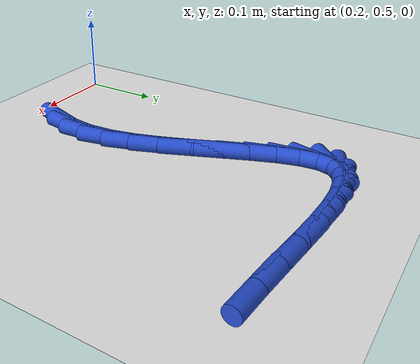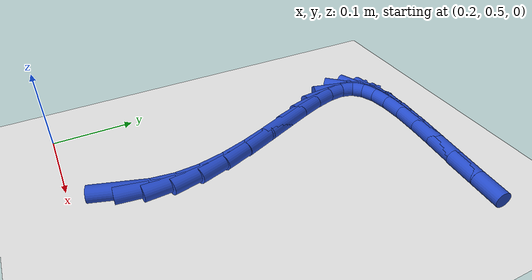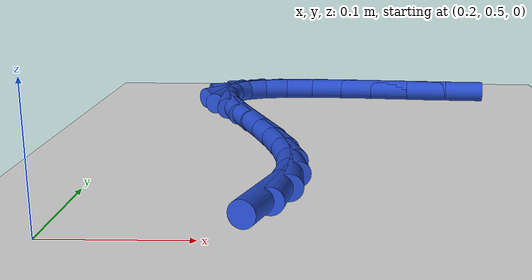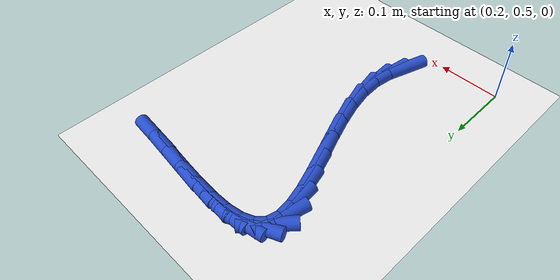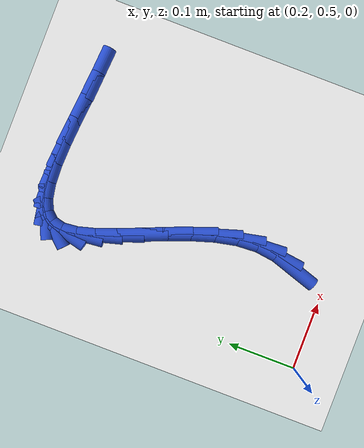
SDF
<sdf version="1.6">
 <world name="default">
  <model name="ground_plane">
   <static>1</static>
   <link name="link">
    <collision name="collision">
     <geometry><plane><normal>0 0 1</normal><size>100 100</size></plane></geometry>
     <surface><friction><ode><mu>100</mu><mu2>50</mu2></ode></friction></surface>
    </collision>
    <visual name="visual">
     <cast_shadows>0</cast_shadows>
     <geometry><plane><normal>0 0 1</normal><size>100 100</size></plane></geometry>
     <material>
      <script><uri>file://media/materials/scripts/gazebo.material</uri><name>Gazebo/WhiteGlow</name></script>
     </material>
    </visual>
   </link>
  </model>
  <model name="line">
   <link name="link_22">
    <pose>0.33706564397052713 0.5579899461944575 0.01 0 1.57 1.2600442952651378</pose>
    <collision name="collision">
     <geometry><cylinder><radius>0.01</radius><length>0.08</length></cylinder></geometry>
    </collision>
    <visual name="visual">
     <material>
      <script><name>Gazebo/Blue</name><uri>file://media/materials/scripts/gazebo.material</uri></script>
     </material>
     <geometry><cylinder><radius>0.01</radius><length>0.08</length></cylinder></geometry>
    </visual>
   </link>
   <link name="link_23">
    <pose>0.3457171097198556 0.5849283855907759 0.01 0 1.57 1.443409605075324</pose>
    <collision name="collision">
     <geometry><cylinder><radius>0.01</radius><length>0.08</length></cylinder></geometry>
    </collision>
    <visual name="visual">
     <material>
      <script><name>Gazebo/Blue</name><uri>file://media/materials/scripts/gazebo.material</uri></script>
     </material>
     <geometry><cylinder><radius>0.01</radius><length>0.08</length></cylinder></geometry>
    </visual>
   </link>
   <link name="link_24">
    <pose>0.34940391397387377 0.6137134913662359 0.01 0 1.57 -1.511514143034651</pose>
    <collision name="collision">
     <geometry><cylinder><radius>0.01</radius><length>0.08</length></cylinder></geometry>
    </collision>
    <visual name="visual">
     <material>
      <script><name>Gazebo/Blue</name><uri>file://media/materials/scripts/gazebo.material</uri></script>
     </material>
     <geometry><cylinder><radius>0.01</radius><length>0.08</length></cylinder></geometry>
    </visual>
   </link>
   <link name="link_25">
    <pose>0.3475731662856283 0.6445592265192032 0.01 0 1.57 -1.3617061272588245</pose>
    <collision name="collision">
     <geometry><cylinder><radius>0.01</radius><length>0.08</length></cylinder></geometry>
    </collision>
    <visual name="visual">
     <material>
      <script><name>Gazebo/Blue</name><uri>file://media/materials/scripts/gazebo.material</uri></script>
     </material>
     <geometry><cylinder><radius>0.01</radius><length>0.08</length></cylinder></geometry>
    </visual>
   </link>
   <link name="link_26">
    <pose>0.34065296901439907 0.6771722077106695 0.01 0 1.57 -1.265019465220156</pose>
    <collision name="collision">
     <geometry><cylinder><radius>0.01</radius><length>0.08</length></cylinder></geometry>
    </collision>
    <visual name="visual">
     <material>
      <script><name>Gazebo/Blue</name><uri>file://media/materials/scripts/gazebo.material</uri></script>
     </material>
     <geometry><cylinder><radius>0.01</radius><length>0.08</length></cylinder></geometry>
    </visual>
   </link>
   <link name="link_27">
    <pose>0.3300527361134496 0.7107515403947458 0.01 0 1.57 -1.2072986790704372</pose>
    <collision name="collision">
     <geometry><cylinder><radius>0.01</radius><length>0.08</length></cylinder></geometry>
    </collision>
    <visual name="visual">
     <material>
      <script><name>Gazebo/Blue</name><uri>file://media/materials/scripts/gazebo.material</uri></script>
     </material>
     <geometry><cylinder><radius>0.01</radius><length>0.08</length></cylinder></geometry>
    </visual>
   </link>
   <link name="link_28">
    <pose>0.31722457221441464 0.7444742514137802 0.01 0 1.57 -1.180241004380367</pose>
    <collision name="collision">
     <geometry><cylinder><radius>0.01</radius><length>0.08</length></cylinder></geometry>
    </collision>
    <visual name="visual">
     <material>
      <script><name>Gazebo/Blue</name><uri>file://media/materials/scripts/gazebo.material</uri></script>
     </material>
     <geometry><cylinder><radius>0.01</radius><length>0.08</length></cylinder></geometry>
    </visual>
   </link>
   <link name="link_29">
    <pose>0.30362058194892955 0.7775173676101204 0.01 0 1.57 -1.1818053028943247</pose>
    <collision name="collision">
     <geometry><cylinder><radius>0.01</radius><length>0.08</length></cylinder></geometry>
    </collision>
    <visual name="visual">
     <material>
      <script><name>Gazebo/Blue</name><uri>file://media/materials/scripts/gazebo.material</uri></script>
     </material>
     <geometry><cylinder><radius>0.01</radius><length>0.08</length></cylinder></geometry>
    </visual>
   </link>
   <link name="link_30">
    <pose>0.2906928699486294 0.8090579158261135 0.01 0 1.57 -1.2167242451135813</pose>
    <collision name="collision">
     <geometry><cylinder><radius>0.01</radius><length>0.08</length></cylinder></geometry>
    </collision>
    <visual name="visual">
     <material>
      <script><name>Gazebo/Blue</name><uri>file://media/materials/scripts/gazebo.material</uri></script>
     </material>
     <geometry><cylinder><radius>0.01</radius><length>0.08</length></cylinder></geometry>
    </visual>
   </link>
   <link name="link_31">
    <pose>0.2798935408451488 0.8382729229041075 0.01 0 1.57 -1.30062787033472</pose>
    <collision name="collision">
     <geometry><cylinder><radius>0.01</radius><length>0.08</length></cylinder></geometry>
    </collision>
    <visual name="visual">
     <material>
      <script><name>Gazebo/Blue</name><uri>file://media/materials/scripts/gazebo.material</uri></script>
     </material>
     <geometry><cylinder><radius>0.01</radius><length>0.08</length></cylinder></geometry>
    </visual>
   </link>
   <link name="link_32">
    <pose>0.27267469927012306 0.86433941568645 0.01 0 1.57 -1.4721696880536552</pose>
    <collision name="collision">
     <geometry><cylinder><radius>0.01</radius><length>0.08</length></cylinder></geometry>
    </collision>
    <visual name="visual">
     <material>
      <script><name>Gazebo/Blue</name><uri>file://media/materials/scripts/gazebo.material</uri></script>
     </material>
     <geometry><cylinder><radius>0.01</radius><length>0.08</length></cylinder></geometry>
    </visual>
   </link>
   <link name="link_33">
    <pose>0.27048844985518705 0.8864344210154884 0.01 0 1.57 1.3277084426575376</pose>
    <collision name="collision">
     <geometry><cylinder><radius>0.01</radius><length>0.08</length></cylinder></geometry>
    </collision>
    <visual name="visual">
     <material>
      <script><name>Gazebo/Blue</name><uri>file://media/materials/scripts/gazebo.material</uri></script>
     </material>
     <geometry><cylinder><radius>0.01</radius><length>0.08</length></cylinder></geometry>
    </visual>
   </link>
   <link name="link_34">
    <pose>0.2747799939907737 0.903739593108168 0.01 0 1.57 0.8164979542598615</pose>
    <collision name="collision">
     <geometry><cylinder><radius>0.01</radius><length>0.08</length></cylinder></geometry>
    </collision>
    <visual name="visual">
     <material>
      <script><name>Gazebo/Blue</name><uri>file://media/materials/scripts/gazebo.material</uri></script>
     </material>
     <geometry><cylinder><radius>0.01</radius><length>0.08</length></cylinder></geometry>
    </visual>
   </link>
   <link name="link_35">
    <pose>0.28624393927247543 0.9159397235566972 0.01 0 1.57 0.40721604151239205</pose>
    <collision name="collision">
     <geometry><cylinder><radius>0.01</radius><length>0.08</length></cylinder></geometry>
    </collision>
    <visual name="visual">
     <material>
      <script><name>Gazebo/Blue</name><uri>file://media/materials/scripts/gazebo.material</uri></script>
     </material>
     <geometry><cylinder><radius>0.01</radius><length>0.08</length></cylinder></geometry>
    </visual>
   </link>
   <link name="link_36">
    <pose>0.3041605986678024 0.9236676326898843 0.01 0 1.57 0.16837543645940953</pose>
    <collision name="collision">
     <geometry><cylinder><radius>0.01</radius><length>0.08</length></cylinder></geometry>
    </collision>
    <visual name="visual">
     <material>
      <script><name>Gazebo/Blue</name><uri>file://media/materials/scripts/gazebo.material</uri></script>
     </material>
     <geometry><cylinder><radius>0.01</radius><length>0.08</length></cylinder></geometry>
    </visual>
   </link>
   <link name="link_37">
    <pose>0.3276536985306626 0.9276611038382451 0.01 0 1.57 0.03534182285236578</pose>
    <collision name="collision">
     <geometry><cylinder><radius>0.01</radius><length>0.08</length></cylinder></geometry>
    </collision>
    <visual name="visual">
     <material>
      <script><name>Gazebo/Blue</name><uri>file://media/materials/scripts/gazebo.material</uri></script>
     </material>
     <geometry><cylinder><radius>0.01</radius><length>0.08</length></cylinder></geometry>
    </visual>
   </link>
   <link name="link_38">
    <pose>0.3558469652149644 0.9286579203322948 0.01 0 1.57 -0.03939767893711735</pose>
    <collision name="collision">
     <geometry><cylinder><radius>0.01</radius><length>0.08</length></cylinder></geometry>
    </collision>
    <visual name="visual">
     <material>
      <script><name>Gazebo/Blue</name><uri>file://media/materials/scripts/gazebo.material</uri></script>
     </material>
     <geometry><cylinder><radius>0.01</radius><length>0.08</length></cylinder></geometry>
    </visual>
   </link>
   <link name="link_39">
    <pose>0.387864125074616 0.9273958655025492 0.01 0 1.57 -0.07943099303169561</pose>
    <collision name="collision">
     <geometry><cylinder><radius>0.01</radius><length>0.08</length></cylinder></geometry>
    </collision>
    <visual name="visual">
     <material>
      <script><name>Gazebo/Blue</name><uri>file://media/materials/scripts/gazebo.material</uri></script>
     </material>
     <geometry><cylinder><radius>0.01</radius><length>0.08</length></cylinder></geometry>
    </visual>
   </link>
   <link name="link_40">
    <pose>0.4228289044635256 0.9246127226795235 0.01 0 1.57 -0.09600044534519736</pose>
    <collision name="collision">
     <geometry><cylinder><radius>0.01</radius><length>0.08</length></cylinder></geometry>
    </collision>
    <visual name="visual">
     <material>
      <script><name>Gazebo/Blue</name><uri>file://media/materials/scripts/gazebo.material</uri></script>
     </material>
     <geometry><cylinder><radius>0.01</radius><length>0.08</length></cylinder></geometry>
    </visual>
   </link>
   <link name="link_41">
    <pose>0.45986502973560106 0.9210462751937329 0.01 0 1.57 -0.09419739761582085</pose>
    <collision name="collision">
     <geometry><cylinder><radius>0.01</radius><length>0.08</length></cylinder></geometry>
    </collision>
    <visual name="visual">
     <material>
      <script><name>Gazebo/Blue</name><uri>file://media/materials/scripts/gazebo.material</uri></script>
     </material>
     <geometry><cylinder><radius>0.01</radius><length>0.08</length></cylinder></geometry>
    </visual>
   </link>
   <link name="link_42">
    <pose>0.4980962272447507 0.9174343063756931 0.01 0 1.57 -0.07559386525455299</pose>
    <collision name="collision">
     <geometry><cylinder><radius>0.01</radius><length>0.08</length></cylinder></geometry>
    </collision>
    <visual name="visual">
     <material>
      <script><name>Gazebo/Blue</name><uri>file://media/materials/scripts/gazebo.material</uri></script>
     </material>
     <geometry><cylinder><radius>0.01</radius><length>0.08</length></cylinder></geometry>
    </visual>
   </link>
  </model>
 </world>
</sdf>
